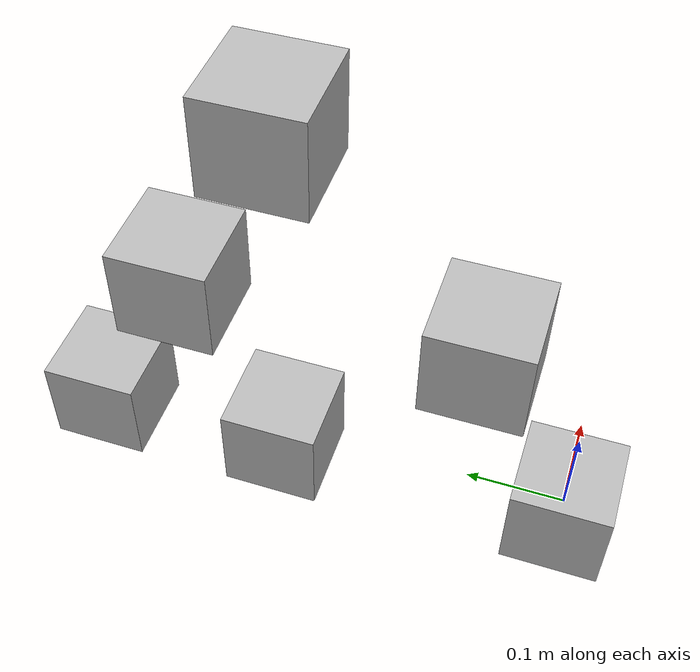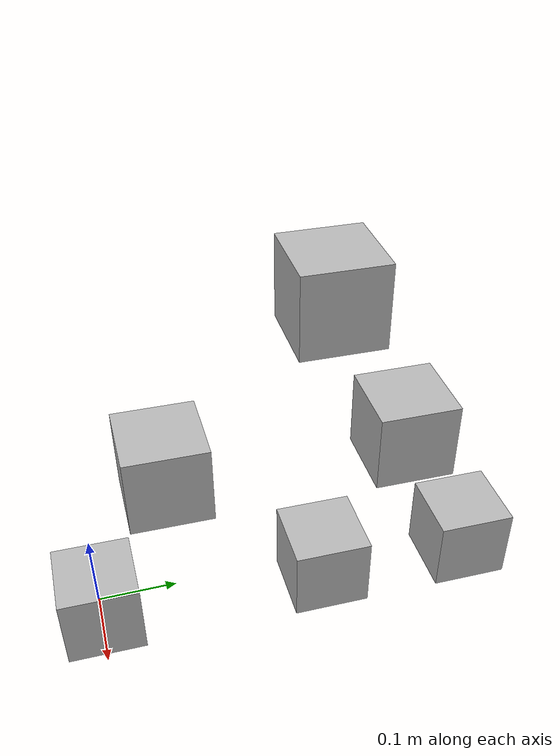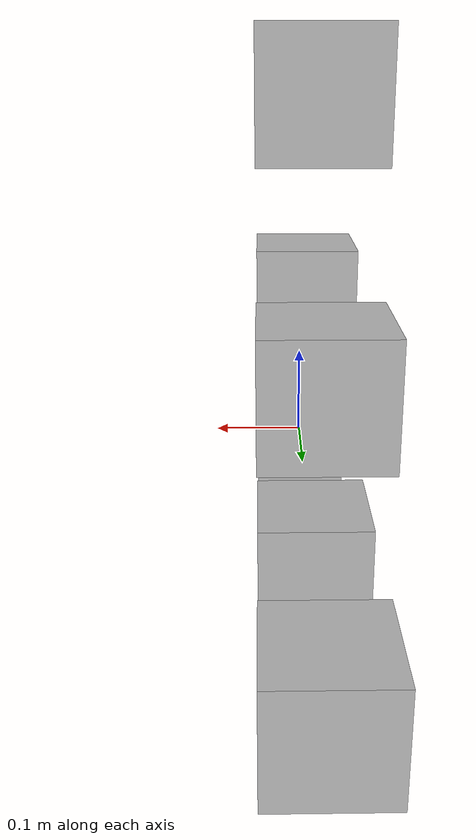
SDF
<?xml version='1.0' encoding='utf-8'?>
<sdf version="1.7">
  <model name="graph_tree_non_canonical_root">
    <link name="graph_tree_non_canonical_root_link_1">
      <pose>0 0.4 0.2 0 0 0</pose>
      <visual name="graph_tree_non_canonical_root_link_1_visual">
        <geometry>
          <box>
            <size>0.1 0.1 0.1</size>
          </box>
        </geometry>
      </visual>
      <collision name="graph_tree_non_canonical_root_link_1_collision">
        <geometry>
          <box>
            <size>0.1 0.1 0.1</size>
          </box>
        </geometry>
      </collision>
      <inertial>
        <mass>1.23</mass>
        <inertia>
          <ixx>0.00205</ixx>
          <ixy>0</ixy>
          <ixz>0</ixz>
          <iyy>0.00205</iyy>
          <iyz>0</iyz>
          <izz>0.00205</izz>
        </inertia>
      </inertial>
    </link>
    <link name="graph_tree_non_canonical_root_link_2">
      <pose>0 0.1 0.2 0 0 0</pose>
      <visual name="graph_tree_non_canonical_root_link_2_visual">
        <geometry>
          <box>
            <size>0.1 0.1 0.1</size>
          </box>
        </geometry>
      </visual>
      <collision name="graph_tree_non_canonical_root_link_2_collision">
        <geometry>
          <box>
            <size>0.1 0.1 0.1</size>
          </box>
        </geometry>
      </collision>
      <inertial>
        <mass>1.23</mass>
        <inertia>
          <ixx>0.00205</ixx>
          <ixy>0</ixy>
          <ixz>0</ixz>
          <iyy>0.00205</iyy>
          <iyz>0</iyz>
          <izz>0.00205</izz>
        </inertia>
      </inertial>
    </link>
    <link name="graph_tree_non_canonical_root_link_3">
      <pose>0 0.3 0.4 0 0 0</pose>
      <visual name="graph_tree_non_canonical_root_link_3_visual">
        <geometry>
          <box>
            <size>0.1 0.1 0.1</size>
          </box>
        </geometry>
      </visual>
      <collision name="graph_tree_non_canonical_root_link_3_collision">
        <geometry>
          <box>
            <size>0.1 0.1 0.1</size>
          </box>
        </geometry>
      </collision>
      <inertial>
        <mass>1.23</mass>
        <inertia>
          <ixx>0.00205</ixx>
          <ixy>0</ixy>
          <ixz>0</ixz>
          <iyy>0.00205</iyy>
          <iyz>0</iyz>
          <izz>0.00205</izz>
        </inertia>
      </inertial>
    </link>
    <link name="graph_tree_non_canonical_root_link_4">
      <pose>0 0.3 0 0 0 0</pose>
      <visual name="graph_tree_non_canonical_root_link_4_visual">
        <geometry>
          <box>
            <size>0.1 0.1 0.1</size>
          </box>
        </geometry>
      </visual>
      <collision name="graph_tree_non_canonical_root_link_4_collision">
        <geometry>
          <box>
            <size>0.1 0.1 0.1</size>
          </box>
        </geometry>
      </collision>
      <inertial>
        <mass>1.23</mass>
        <inertia>
          <ixx>0.00205</ixx>
          <ixy>0</ixy>
          <ixz>0</ixz>
          <iyy>0.00205</iyy>
          <iyz>0</iyz>
          <izz>0.00205</izz>
        </inertia>
      </inertial>
    </link>
    <link name="graph_tree_non_canonical_root_link_5">
      <pose>0 0 0 0 0 0</pose>
      <visual name="graph_tree_non_canonical_root_link_5_visual">
        <geometry>
          <box>
            <size>0.1 0.1 0.1</size>
          </box>
        </geometry>
      </visual>
      <collision name="graph_tree_non_canonical_root_link_5_collision">
        <geometry>
          <box>
            <size>0.1 0.1 0.1</size>
          </box>
        </geometry>
      </collision>
      <inertial>
        <mass>1.23</mass>
        <inertia>
          <ixx>0.00205</ixx>
          <ixy>0</ixy>
          <ixz>0</ixz>
          <iyy>0.00205</iyy>
          <iyz>0</iyz>
          <izz>0.00205</izz>
        </inertia>
      </inertial>
    </link>
    <link name="graph_tree_non_canonical_root_link_6">
      <pose>0 0.5 0 0 0 0</pose>
      <visual name="graph_tree_non_canonical_root_link_6_visual">
        <geometry>
          <box>
            <size>0.1 0.1 0.1</size>
          </box>
        </geometry>
      </visual>
      <collision name="graph_tree_non_canonical_root_link_6_collision">
        <geometry>
          <box>
            <size>0.1 0.1 0.1</size>
          </box>
        </geometry>
      </collision>
      <inertial>
        <mass>1.23</mass>
        <inertia>
          <ixx>0.00205</ixx>
          <ixy>0</ixy>
          <ixz>0</ixz>
          <iyy>0.00205</iyy>
          <iyz>0</iyz>
          <izz>0.00205</izz>
        </inertia>
      </inertial>
    </link>
    <joint name="joint_1" type="revolute">
      <parent>graph_tree_non_canonical_root_link_3</parent>
      <child>graph_tree_non_canonical_root_link_2</child>
      <axis>
        <xyz>1 0 0</xyz>
      </axis>
    </joint>
    <joint name="joint_2" type="revolute">
      <parent>graph_tree_non_canonical_root_link_3</parent>
      <child>graph_tree_non_canonical_root_link_1</child>
      <axis>
        <xyz>1 0 0</xyz>
      </axis>
    </joint>
    <joint name="joint_3" type="revolute">
      <parent>graph_tree_non_canonical_root_link_2</parent>
      <child>graph_tree_non_canonical_root_link_5</child>
      <axis>
        <xyz>1 0 0</xyz>
      </axis>
    </joint>
    <joint name="joint_4" type="revolute">
      <parent>graph_tree_non_canonical_root_link_1</parent>
      <child>graph_tree_non_canonical_root_link_4</child>
      <axis>
        <xyz>1 0 0</xyz>
      </axis>
    </joint>
    <joint name="joint_5" type="revolute">
      <parent>graph_tree_non_canonical_root_link_1</parent>
      <child>graph_tree_non_canonical_root_link_6</child>
      <axis>
        <xyz>1 0 0</xyz>
      </axis>
    </joint>
  </model>
</sdf>
